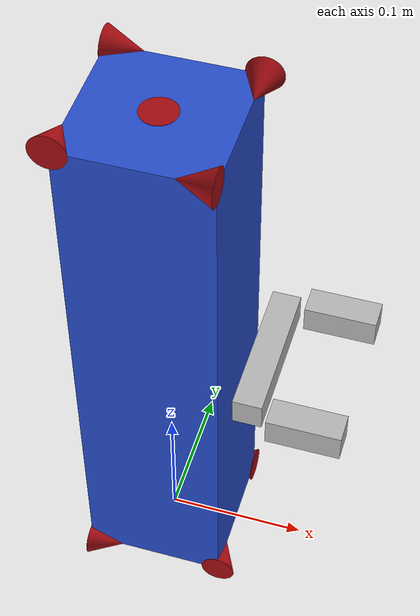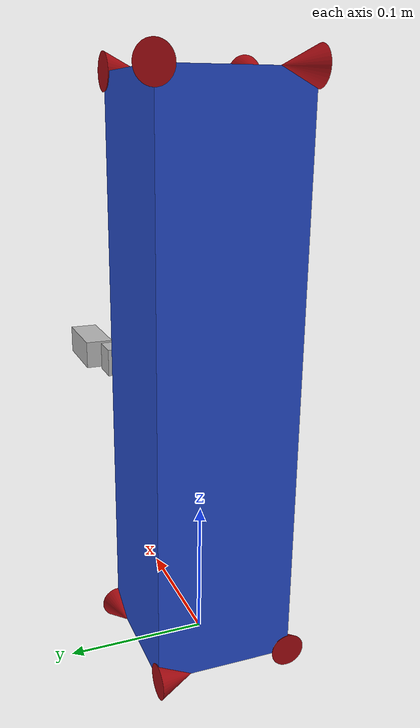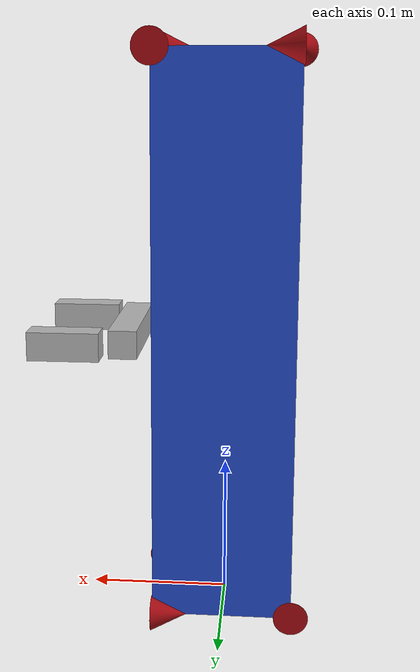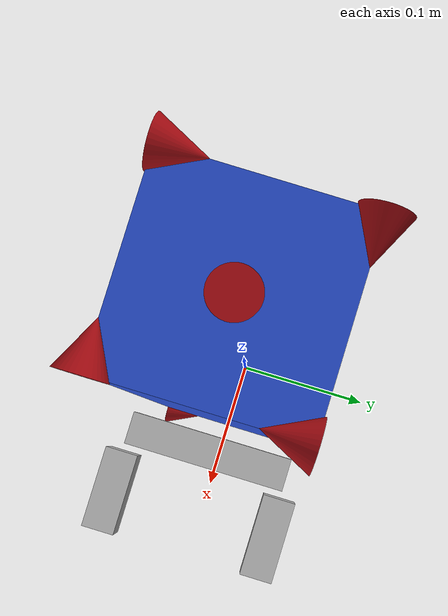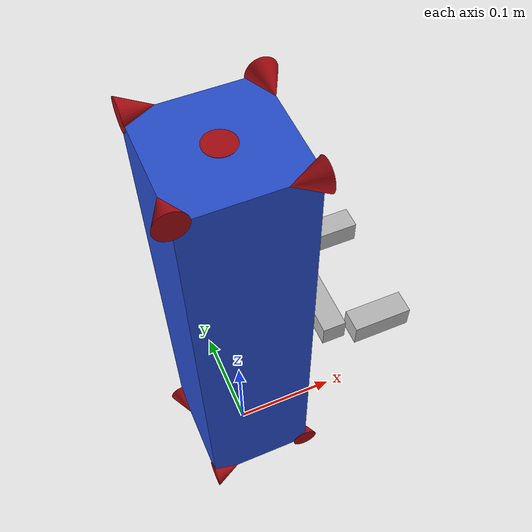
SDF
<?xml version="1.0"?>
<sdf version="1.4">
  <world name="default">
    <!-- Light Source -->
    <light type="directional" name="sun">
      <cast_shadows>true</cast_shadows>
      <pose>0 0 5 0 0 0</pose>
      <diffuse>0.8 0.8 0.8 1</diffuse>
      <specular>0.2 0.2 0.2 1</specular>
      <attenuation>
        <range>1000</range>
        <constant>0.9</constant>
        <linear>0.01</linear>
        <quadratic>0.001</quadratic>
      </attenuation>
      <direction>1 1 -1</direction>
    </light>
    <model name="satellitewitharm">
      <include>
        <uri>model://satellite</uri>
      </include>
      <link name="palm">
        <pose>0.07 0 0.2 0 0 0</pose>
        <inertial>
          <mass>0.02</mass>
        </inertial>
        <visual name="palm_vis">
          <geometry>
            <box>
              <size>0.02 0.1 0.02</size>
            </box>
          </geometry>
        </visual>
        <collision name="palm_col">
          <geometry>
            <box>
              <size>0.02 0.1 0.02</size>
            </box>
          </geometry>
        </collision>
      </link>
      <link name="left_finger">
        <inertial>
          <mass>0.01</mass>
        </inertial>
        <pose>0.11 -0.05 0.2 0 0 0</pose>
        <visual name="left_finger_vis">
          <geometry>
            <box>
              <size>0.05 0.02 0.02</size>
            </box>
          </geometry>
        </visual>
        <collision name="left_finger_col">
          <geometry>
            <box>
              <size>0.05 0.02 0.02</size>
            </box>
          </geometry>
        </collision>
      </link>
      <link name="right_finger">
        <inertial>
          <mass>0.01</mass>
        </inertial>
        <pose>0.11 0.05 0.2 0 0 0</pose>
        <visual name="right_finger_vis">
          <geometry>
            <box>
              <size>0.05 0.02 0.02</size>
            </box>
          </geometry>
        </visual>
        <collision name="right_finger_col">
          <geometry>
            <box>
              <size>0.05 0.02 0.02</size>
            </box>
          </geometry>
        </collision>
      </link>
      <joint name="l_finger_palm" type="prismatic">
        <child>left_finger</child>
        <parent>palm</parent>
        <axis>
          <limit>
            <lower>-0.05</lower>
            <upper>0.05</upper>
          </limit>
          <xyz>0 1 0</xyz>
        </axis>
      </joint>
      <joint name="r_finger_palm" type="prismatic">
        <child>right_finger</child>
        <parent>palm</parent>
        <axis>
          <limit>
            <lower>-0.05</lower>
            <upper>0.05</upper>
          </limit>
          <xyz>0 1 0</xyz>
        </axis>
      </joint>
      <joint name="gripper_joint" type="revolute">
        <parent>satellite::link</parent>
        <child>palm</child>
        <axis>
          <xyz>0 1 0</xyz>
          <limit>
            <lower>0</lower>
            <upper>0</upper>
          </limit>
        </axis>
      </joint>
    </model>
    <physics type="ode">
      <gravity>0 0 0</gravity>
    </physics>
    <plugin name="gazebo_rosmatlab_bridge" filename="libgazebo_rosmatlab_bridge.so">
      <links>satellite::thruster1::link;satellite::thruster2::link;satellite::thruster3::link;satellite::thruster4::link;satellite::thruster5::link;satellite::thruster6::link;satellite::thruster7::link;satellite::thruster8::link;satellite::thruster9::link;satellite::thruster10::link;satellite::link</links>
      <joints>gripper_joint;l_finger_palm;r_finger_palm</joints>
    </plugin>
  </world>
</sdf>

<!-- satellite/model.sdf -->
<sdf version="1.4">
  <model name="satellite">
    <pose>0 0 0.2 0 0 0</pose>
    <link name="link">
      <inertial>
        <mass>5</mass>
        <inertia>
          <ixx>0.070833</ixx>
          <ixy>0</ixy>
          <ixz>0</ixz>
          <iyy>0.070833</iyy>
          <iyz>0</iyz>
          <izz>0.00833</izz>
        </inertia>
      </inertial>
      <collision name="sat_collision">
        <geometry>
          <box>
            <size>0.1 0.1 0.4</size>
          </box>
        </geometry>
      </collision>
      <visual name="sat_visual">
        <geometry>
          <box>
            <size>0.1 0.1 0.4</size>
          </box>
        </geometry>
        <material>
          <script>
            <uri>file://media/materials/scripts/gazebo.material</uri>
            <name>Gazebo/Blue</name>
          </script>
        </material>
      </visual>
    </link>
    <include>
      <pose>0.05 0.05 0.2 1.57 0 0</pose>
      <uri>model://thruster</uri>
      <name>thruster1</name>
    </include>
    <include>
      <pose>0.05 -0.05 0.2 1.57 0 -1.57</pose>
      <uri>model://thruster</uri>
      <name>thruster2</name>
    </include>
    <include>
      <pose>-0.05 -0.05 0.2 1.57 0 -3.14</pose>
      <uri>model://thruster</uri>
      <name>thruster3</name>
    </include>
    <include>
      <pose>-0.05 0.05 0.2 1.57 0 1.57</pose>
      <uri>model://thruster</uri>
      <name>thruster4</name>
    </include>
    <include>
      <pose>0.05 0.05 -0.2 -1.57 0 1.57</pose>
      <uri>model://thruster</uri>
      <name>thruster5</name>
    </include>
    <include>
      <pose>0.05 -0.05 -0.2 -1.57 0 0</pose>
      <uri>model://thruster</uri>
      <name>thruster6</name>
    </include>
    <include>
      <pose>-0.05 -0.05 -0.2 -1.57 0 -1.57</pose>
      <uri>model://thruster</uri>
      <name>thruster7</name>
    </include>
    <include>
      <pose>-0.05 0.05 -0.2 -1.57 0 -3.14</pose>
      <uri>model://thruster</uri>
      <name>thruster8</name>
    </include>
    <include>
      <pose>0.0 0.0 0.2 -3.14 0 0</pose>
      <uri>model://thruster</uri>
      <name>thruster9</name>
    </include>
    <include>
      <pose>0.0 0.0 -0.2 3.14 0 0</pose>
      <uri>model://thruster</uri>
      <name>thruster10</name>
    </include>

    <joint name="thruster1_joint" type="revolute">
      <parent>satellite::link</parent>
      <child>thruster1::link</child>
      <axis>
        <xyz>0.000000 0.000000 1.000000</xyz>
        <limit>
          <upper>0.000000</upper>
          <lower>0.000000</lower>
        </limit>
      </axis>
    </joint>
    <joint name="thruster2_joint" type="revolute">
      <parent>satellite::link</parent>
      <child>thruster2::link</child>
      <axis>
        <xyz>0.000000 0.000000 1.000000</xyz>
        <limit>
          <upper>0.000000</upper>
          <lower>0.000000</lower>
        </limit>
      </axis>
    </joint>

    <joint name="thruster3_joint" type="revolute">
      <parent>satellite::link</parent>
      <child>thruster3::link</child>
      <axis>
        <xyz>0.000000 0.000000 1.000000</xyz>
        <limit>
          <upper>0.000000</upper>
          <lower>0.000000</lower>
        </limit>
      </axis>
    </joint>

    <joint name="thruster4_joint" type="revolute">
      <parent>satellite::link</parent>
      <child>thruster4::link</child>
      <axis>
        <xyz>0.000000 0.000000 1.000000</xyz>
        <limit>
          <upper>0.000000</upper>
          <lower>0.000000</lower>
        </limit>
      </axis>
    </joint>

    <joint name="thruster5_joint" type="revolute">
      <parent>satellite::link</parent>
      <child>thruster5::link</child>
      <axis>
        <xyz>0.000000 0.000000 1.000000</xyz>
        <limit>
          <upper>0.000000</upper>
          <lower>0.000000</lower>
        </limit>
      </axis>
    </joint>

    <joint name="thruster6_joint" type="revolute">
      <parent>satellite::link</parent>
      <child>thruster6::link</child>
      <axis>
        <xyz>0.000000 0.000000 1.000000</xyz>
        <limit>
          <upper>0.000000</upper>
          <lower>0.000000</lower>
        </limit>
      </axis>
    </joint>

    <joint name="thruster7_joint" type="revolute">
      <parent>satellite::link</parent>
      <child>thruster7::link</child>
      <axis>
        <xyz>0.000000 0.000000 1.000000</xyz>
        <limit>
          <upper>0.000000</upper>
          <lower>0.000000</lower>
        </limit>
      </axis>
    </joint>

    <joint name="thruster8_joint" type="revolute">
      <parent>satellite::link</parent>
      <child>thruster8::link</child>
      <axis>
        <xyz>0.000000 0.000000 1.000000</xyz>
        <limit>
          <upper>0.000000</upper>
          <lower>0.000000</lower>
        </limit>
      </axis>
    </joint>

    <joint name="thruster9_joint" type="revolute">
      <parent>satellite::link</parent>
      <child>thruster9::link</child>
      <axis>
        <xyz>0.000000 0.000000 1.000000</xyz>
        <limit>
          <upper>0.000000</upper>
          <lower>0.000000</lower>
        </limit>
      </axis>
    </joint>

    <joint name="thruster10_joint" type="revolute">
      <parent>satellite::link</parent>
      <child>thruster10::link</child>
      <axis>
        <xyz>0.000000 0.000000 1.000000</xyz>
        <limit>
          <upper>0.000000</upper>
          <lower>0.000000</lower>
        </limit>
      </axis>
    </joint>

  </model>
</sdf>

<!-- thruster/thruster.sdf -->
<sdf version="1.4">
  <model name="thruster">
    <link name="link">
      <inertial>
        <mass>0.01</mass>
        <inertia>
          <ixx>1e-7</ixx>
          <ixy>0</ixy>
          <ixz>0</ixz>
          <iyy>1e-7</iyy>
          <iyz>0</iyz>
          <izz>1e-7</izz>
        </inertia>
      </inertial>
      <visual name="thruster1_visual">
        <geometry>
          <mesh>
            <scale>0.5 0.5 0.5</scale>
            <uri>model://satellite/meshes/cone.dae</uri>
          </mesh>
        </geometry>
      </visual>
    </link>
  </model>
</sdf>
